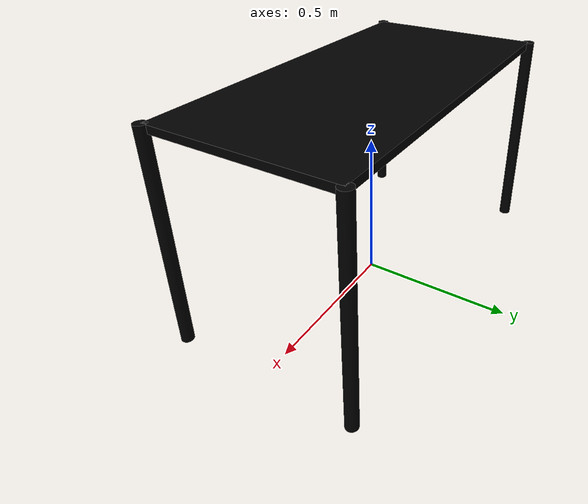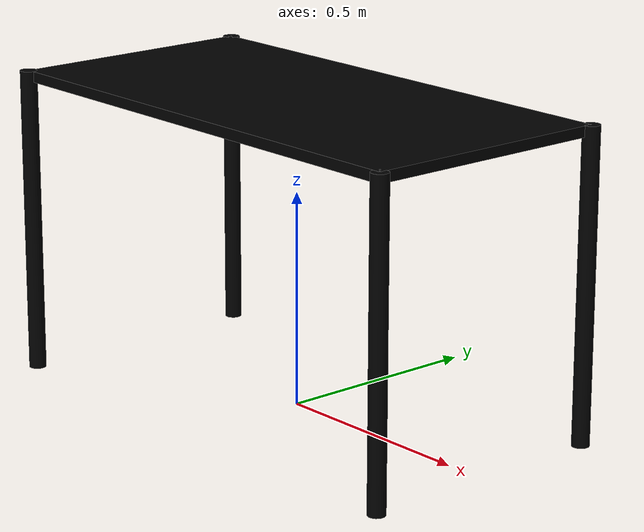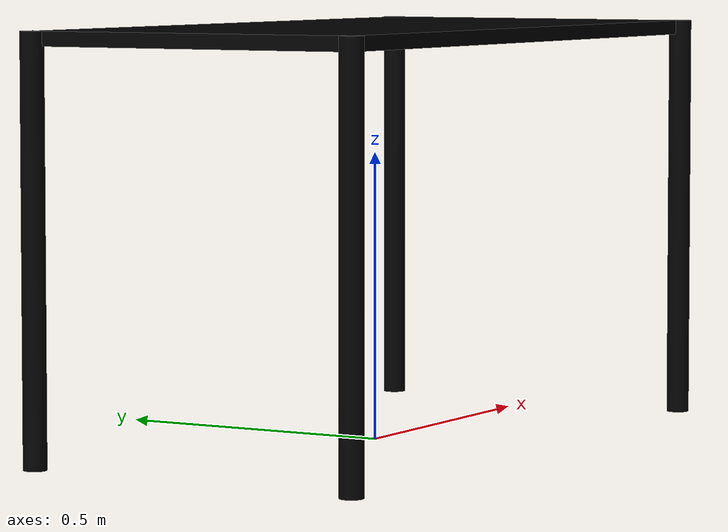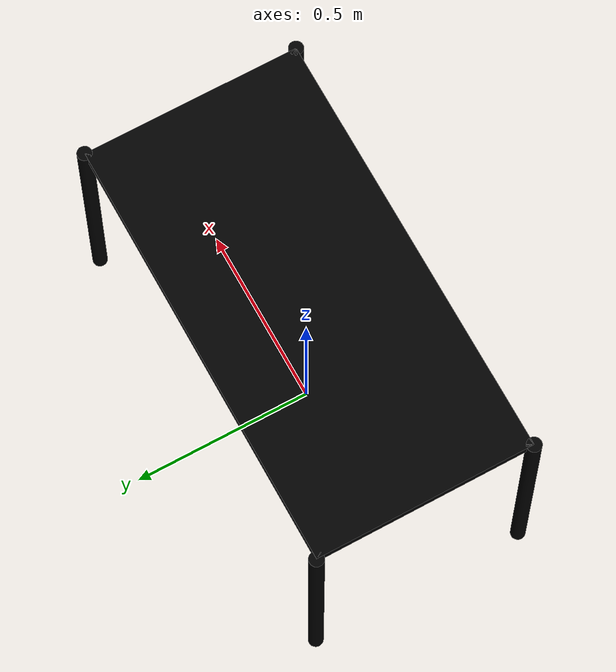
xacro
<?xml version="1.0"?>
<robot name="op_table"
       xmlns:xi="http://www.w3.org/2001/XInclude"
       xmlns:gazebo="http://playerstage.sourceforge.net/gazebo/xmlschema/#gz"
       xmlns:model="http://playerstage.sourceforge.net/gazebo/xmlschema/#model"
       xmlns:sensor="http://playerstage.sourceforge.net/gazebo/xmlschema/#sensor"
       xmlns:body="http://playerstage.sourceforge.net/gazebo/xmlschema/#body"
       xmlns:geom="http://playerstage.sourceforge.net/gazebo/xmlschema/#geom"
       xmlns:joint="http://playerstage.sourceforge.net/gazebo/xmlschema/#joint"
       xmlns:interface="http://playerstage.sourceforge.net/gazebo/xmlschema/#interface"
       xmlns:rendering="http://playerstage.sourceforge.net/gazebo/xmlschema/#rendering"
       xmlns:renderable="http://playerstage.sourceforge.net/gazebo/xmlschema/#renderable"
       xmlns:controller="http://playerstage.sourceforge.net/gazebo/xmlschema/#controller"
       xmlns:physics="http://playerstage.sourceforge.net/gazebo/xmlschema/#physics">

  <property name="op_table_height" value="0.72" />
  <property name="op_table_width"  value="1.2" />
  <property name="op_table_depth"  value="0.6" />
  <property name="op_leg_radius"   value="0.02" />
  <property name="op_table_x"      value="0.0" />
  <property name="op_table_y"      value="0.0" />
  <property name="op_table_z"      value="0.0" />

  <property name="op_table_top_thickness" value="0.025"/>

  <property name="op_table_top_color" value="0 0 0 1" />
  <property name="op_leg_color" value="0 0 0 1" />

  <property name="M_PI" value="3.1415926535897931" />

  <!-- tabletop height is .55+.01+.025=.585 -->
  <link name="op_table_top_link">
    <inertial>
      <mass value="1.0" />
      <origin xyz="${op_table_x} ${op_table_y} ${op_table_z+op_table_height-op_table_top_thickness/2}" />
      <inertia ixx="1" ixy="0"  ixz="0"
               iyy="1" iyz="0"
               izz="1" />
    </inertial>
    <visual>
      <origin xyz="${op_table_x} ${op_table_y} ${op_table_z+op_table_height-op_table_top_thickness/2}" />
      <geometry>
        <box size="${op_table_width} ${op_table_depth} ${op_table_top_thickness}" />
      </geometry>
      <material name="op_table_top_grey">
        <color rgba="${op_table_top_color}"/>
      </material>
    </visual>
    <collision>
      <origin xyz="${op_table_x} ${op_table_y} ${op_table_z+op_table_height-op_table_top_thickness/2}" />
      <geometry>
        <box size="${op_table_width} ${op_table_depth} ${op_table_top_thickness}" />
      </geometry>
    </collision>
  </link>
  <gazebo reference="op_table_top_link">
    <material>Gazebo/LightWood</material>
    <mu1>50.0</mu1>
    <mu2>50.0</mu2>
    <kp>1000000.0</kp>
    <kd>1.0</kd>
  </gazebo>

  <joint name="op_leg1_joint" type="fixed" >
    <parent link="op_table_top_link" />
    <origin xyz="${op_table_x+op_table_width/2} ${op_table_y+op_table_depth/2} ${op_table_z+op_table_height}" rpy="0 0 0" />
    <child link="op_leg1_link" />
  </joint>
  <link name="op_leg1_link">
    <inertial>
      <mass value="1.0" />
      <origin xyz="0 0 ${-op_table_height/2}" />
      <inertia ixx="0.1" ixy="0"  ixz="0"
               iyy="0.1" iyz="0"
               izz="0.01" />
    </inertial>
    <visual>
      <origin xyz="0.0 0.0 ${-op_table_height/2}" rpy="0 0 0" />
      <geometry>
        <cylinder radius="${op_leg_radius}" length="${op_table_height}" />
      </geometry>
      <material name="op_leg1_black">
        <color rgba="${op_leg_color}"/>
      </material>
    </visual>
    <collision>
      <origin xyz="0.0 0.0 ${-op_table_height/2}" rpy="0.0 0.0 0.0" />
      <geometry>
        <cylinder radius="${op_leg_radius}" length="${op_table_height}" />
      </geometry>
    </collision>
  </link>
  <gazebo reference="op_leg1_link">
    <material>Gazebo/Gray</material>
    <mu1>1000.0</mu1>
    <mu2>1000.0</mu2>
    <kp>10000000.0</kp>
    <kd>1.0</kd>
    <selfCollide>true</selfCollide>
  </gazebo>

  <joint name="op_leg2_joint" type="fixed" >
    <parent link="op_table_top_link" />
    <origin xyz="${op_table_x-op_table_width/2} ${op_table_y+op_table_depth/2} ${op_table_z+op_table_height}" rpy="0 0 0" />
    <child link="op_leg2_link" />
  </joint>
  <link name="op_leg2_link">
    <inertial>
      <mass value="1.0" />
      <origin xyz="0 0 ${-op_table_height/2}" />
      <inertia ixx="0.1" ixy="0"  ixz="0"
               iyy="0.1" iyz="0"
               izz="0.01" />
    </inertial>
    <visual>
      <origin xyz="0.0 0.0 ${-op_table_height/2}" rpy="0 0 0" />
      <geometry>
        <cylinder radius="${op_leg_radius}" length="${op_table_height}" />
      </geometry>
      <material name="op_leg2_black">
        <color rgba="${op_leg_color}"/>
      </material>
    </visual>
    <collision>
      <origin xyz="0.0 0.0 ${-op_table_height/2}" rpy="0.0 0.0 0.0" />
      <geometry>
        <cylinder radius="${op_leg_radius}" length="${op_table_height}" />
      </geometry>
    </collision>
  </link>
  <gazebo reference="op_leg2_link">
    <material>Gazebo/Gray</material>
    <mu1>1000.0</mu1>
    <mu2>1000.0</mu2>
    <kp>10000000.0</kp>
    <kd>1.0</kd>
    <selfCollide>true</selfCollide>
  </gazebo>

  <joint name="op_leg3_joint" type="fixed" >
    <parent link="op_table_top_link" />
    <origin xyz="${op_table_x+op_table_width/2} ${op_table_y-op_table_depth/2} ${op_table_z+op_table_height}" rpy="0 0 0" />
    <child link="op_leg3_link" />
  </joint>
  <link name="op_leg3_link">
    <inertial>
      <mass value="1.0" />
      <origin xyz="0 0 ${-op_table_height/2}" />
      <inertia ixx="0.1" ixy="0"  ixz="0"
               iyy="0.1" iyz="0"
               izz="0.01" />
    </inertial>
    <visual>
      <origin xyz="0.0 0.0 ${-op_table_height/2}" rpy="0 0 0" />
      <geometry>
        <cylinder radius="${op_leg_radius}" length="${op_table_height}" />
      </geometry>
      <material name="op_leg3_black">
        <color rgba="${op_leg_color}"/>
      </material>
    </visual>
    <collision>
      <origin xyz="0.0 0.0 ${-op_table_height/2}" rpy="0.0 0.0 0.0" />
      <geometry>
        <cylinder radius="${op_leg_radius}" length="${op_table_height}" />
      </geometry>
    </collision>
  </link>
  <gazebo reference="op_leg3_link">
    <material>Gazebo/Gray</material>
    <mu1>1000.0</mu1>
    <mu2>1000.0</mu2>
    <kp>10000000.0</kp>
    <kd>1.0</kd>
    <selfCollide>true</selfCollide>
  </gazebo>

  <joint name="op_leg4_joint" type="fixed" >
    <parent link="op_table_top_link" />
    <origin xyz="${op_table_x-op_table_width/2} ${op_table_y-op_table_depth/2} ${op_table_z+op_table_height}" rpy="0 0 0" />
    <child link="op_leg4_link" />
  </joint>
  <link name="op_leg4_link">
    <inertial>
      <mass value="1.0" />
      <origin xyz="0 0 ${-op_table_height/2}" />
      <inertia ixx="0.1" ixy="0"  ixz="0"
               iyy="0.1" iyz="0"
               izz="0.01" />
    </inertial>
    <visual>
      <origin xyz="0.0 0.0 ${-op_table_height/2}" rpy="0 0 0" />
      <geometry>
        <cylinder radius="${op_leg_radius}" length="${op_table_height}" />
      </geometry>
      <material name="op_leg4_black">
        <color rgba="${op_leg_color}"/>
      </material>
    </visual>
    <collision>
      <origin xyz="0.0 0.0 ${-op_table_height/2}" rpy="0.0 0.0 0.0" />
      <geometry>
        <cylinder radius="${op_leg_radius}" length="${op_table_height}" />
      </geometry>
    </collision>
  </link>
  <gazebo reference="op_leg4_link">
    <material>Gazebo/Gray</material>
    <mu1>1000.0</mu1>
    <mu2>1000.0</mu2>
    <kp>10000000.0</kp>
    <kd>1.0</kd>
    <selfCollide>true</selfCollide>
  </gazebo>

</robot>
